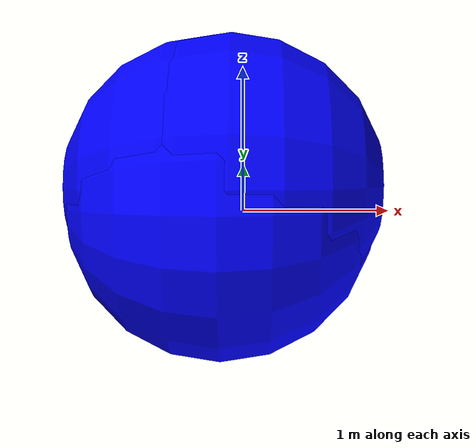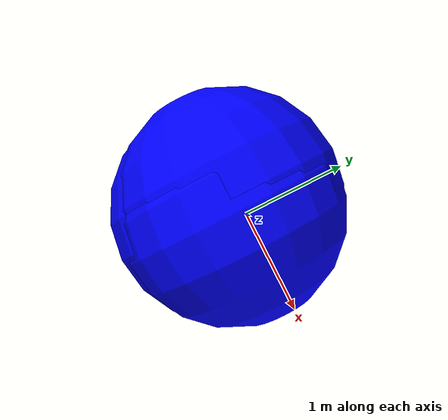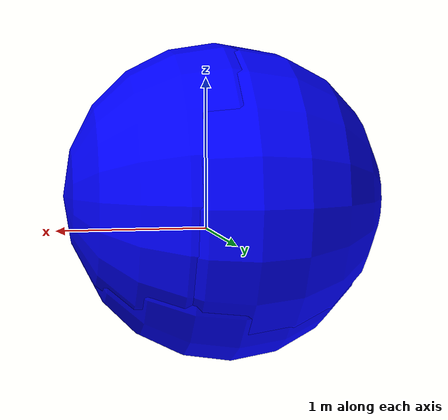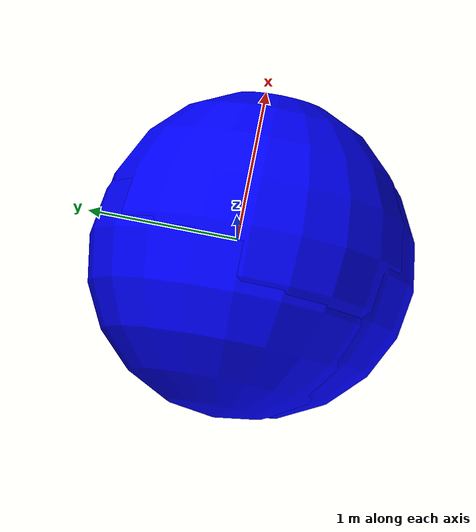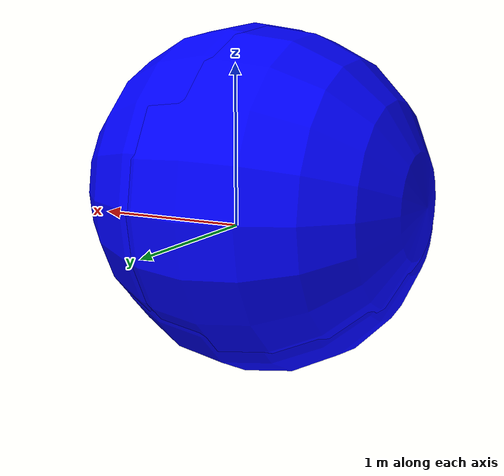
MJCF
<mujoco model="lever_sw">
    <compiler angle="radian" />
    <size njmax="500" nconmax="100" />
    <asset>
        <mesh name="base_link" file="./meshes/lever_sw/base_link.STL" />
        <mesh name="top_link" file="./meshes/lever_sw/top_link.STL" />
        <mesh name="slider_link" file="./meshes/lever_sw/slider_link.STL" />
        <mesh name="lever_link" file="./meshes/lever_sw/lever_link.STL" />
    </asset>
    <worldbody>
        <body>
        <body name="object">
        <body name="base">
        <geom type="mesh" rgba="0.792157 0.819608 0.933333 1" mesh="base_link"  contype="0" group="1"/>
        <body name="top_link" pos="-0.12893 -0.0050165 0.1474" quat="0.499998 -0.5 0.500002 -0.5">
            <inertial pos="0.093897 -0.049338 0.054007" quat="0.708075 0.00408827 0.00409166 0.706114" mass="0.28453" diaginertia="0.000504481 0.000406737 0.000201182" />
            <joint name="top_joint" pos="0 0 0" axis="0 0 -1" limited="true" range="0 1.57" />
            <geom type="mesh" rgba="0.79216 0.81961 0.93333 1" mesh="top_link"  contype="0" group="1"/>
            <site name="top_handle" pos="0.103 -0.075 0.053" size="1.02" rgba="0 0 1 1" />
        </body>
        <body name="slider_link" pos="-0.14288 -0.1524 0.0889" quat="0.499998 -0.5 0.500002 -0.5">
            <inertial pos="0.01423 -0.0076054 0.0096198" quat="0.551182 0.834385 0 0" mass="0.019903" diaginertia="6.9109e-06 6.90008e-06 5.39412e-06" />
            <joint name="slider_joint" pos="0 0 0" axis="0 0 1" type="slide" limited="true" range="0 0.06" />
            <geom type="mesh" rgba="0.79216 0.81961 0.93333 1" mesh="slider_link"  contype="0" group="1"/>
            <site name="slide_handle" pos="0.025 -0.005 0.0025" size="1.02" rgba="0 0 1 1" />
        </body>
        <body name="lever_link" pos="-0.1524 -0.0762 0.1016" quat="0.707105 0 -0.707108 0">
            <inertial pos="0.036131 -0.0029899 0.0028089" quat="-0.0284155 0.646196 -0.0288488 0.762097" mass="0.032636" diaginertia="3.20444e-05 3.16227e-05 3.37021e-06" />
            <joint name="lever_joint" pos="0 0 0" axis="0 0 1" limited="true" range="-1.57 1.57" damping="1" frictionloss="1"/>
            <geom type="mesh" rgba="0.79216 0.81961 0.93333 1" mesh="lever_link"  contype="0" group="1"/>
            <site name="lever_handle" pos="0.1 0 0.025" size="1.02" rgba="0 0 1 1" />
        </body>
        </body>
        </body>
        <site name="bottom_site" pos="0 0 -0.3" rgba="0 0 0 0" size="0.005"/>
        <site name="top_site" pos="0 0 0.3" rgba="0 0 0 0" size="0.005"/>
        <site name="horizontal_radius_site" pos="0.3 0 0" rgba="0 0 0 0" size="0.1"/>
        </body>
    </worldbody>
    <contact>
        <exclude name="exclude_2_body_0" body1="base" body2="top_link"/>
    </contact>
</mujoco>
